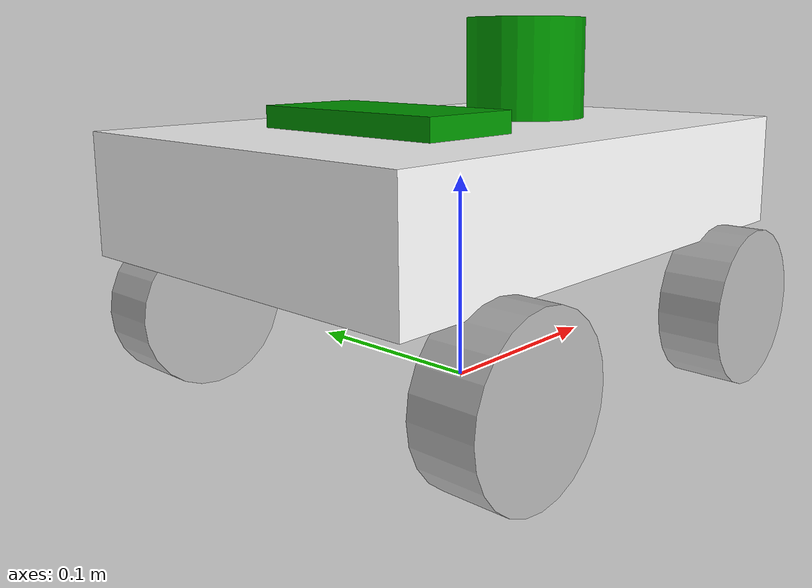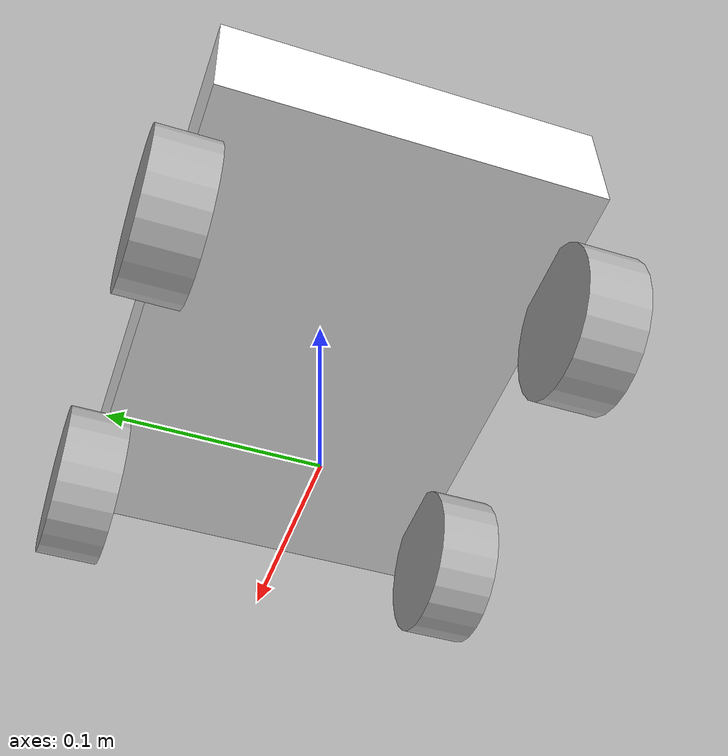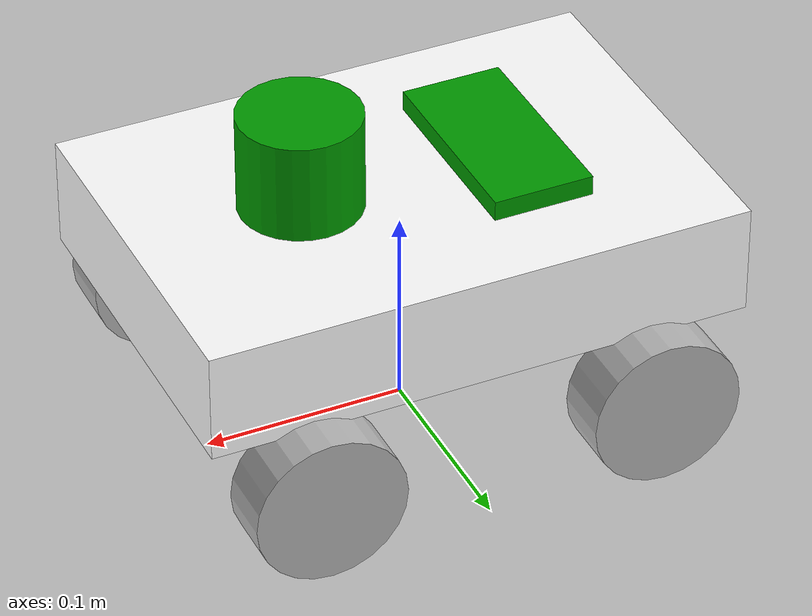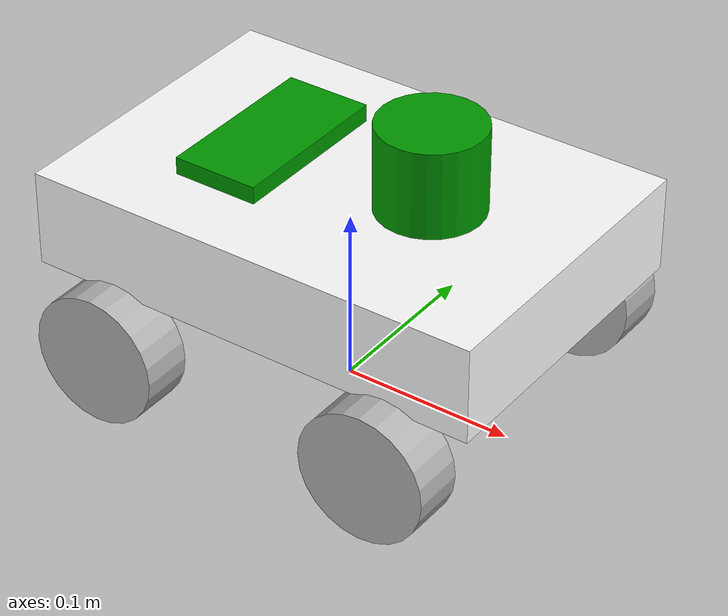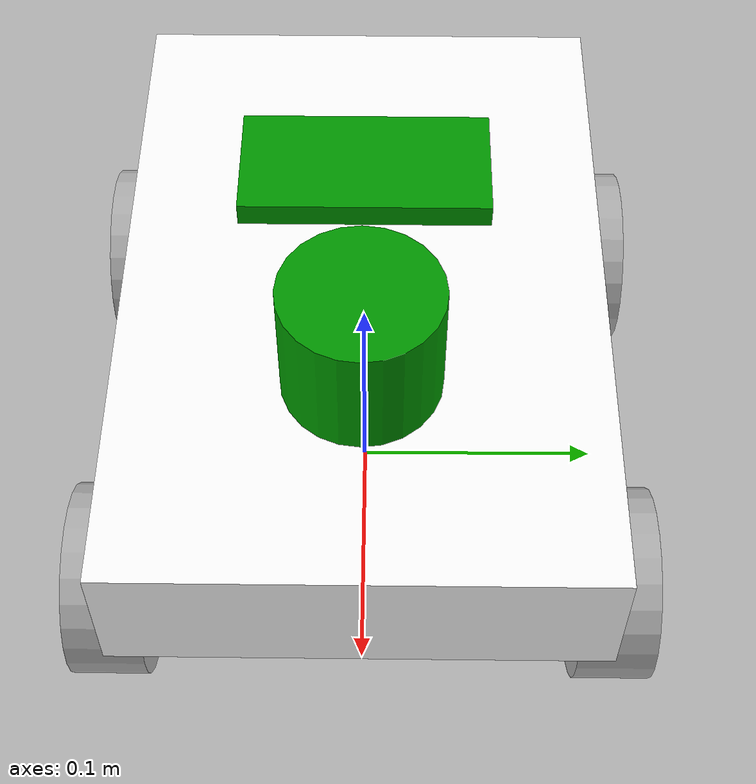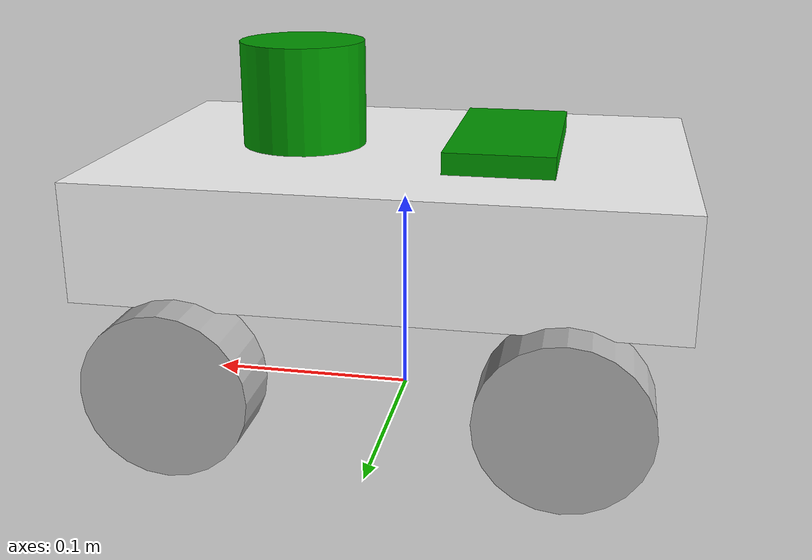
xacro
<?xml version="1.0"?>
<robot name="roscar" xmlns:xacro="http://www.ros.org/wiki/xacro">

    <material name="grey">
        <color rgba="0.7 0.7 0.7 1"/>
    </material>
    <material name="green">
        <color rgba="0 0.6 0 1"/>
    </material>
    <material name="white">
        <color rgba="1 1 1 1"/>
    </material>

    <link name="base_footprint"/>
    <joint name="base_footprint_to_base_link" type="fixed">
        <parent link="base_footprint"/>
        <child link="base_link"/>
        <origin xyz="0 0 0" rpy="0 0 0"/>
    </joint>

    <link name="base_link">
        <visual>
            <geometry>
                <box size="0.27 0.185 0.055"/>
            </geometry>
            <origin xyz="0 0 0.0975" rpy="0 0 0"/>
            <material name="white"/>
        </visual>
        <collision>
            <geometry>
                <box size="0.27 0.185 0.055"/>
            </geometry>
            <origin xyz="0 0 0.0975"/>
        </collision>
        <inertial>
            <origin xyz="0 0 0.0975"/>
            <mass value="1.0"/>
            <inertia ixx="0.03" ixy="0.0" ixz="0.0"
                     iyy="0.05" iyz="0.0"
                     izz="0.07"/>
        </inertial>
    </link>

    <link name="laser_link">
        <visual>
            <geometry>
                <cylinder radius="0.03" length="0.05"/>
            </geometry>
            <origin xyz="0 0 0" rpy="0 0 0"/>
            <material name="green"/>
        </visual>
        <collision>
            <geometry>
                <cylinder radius="0.03" length="0.05"/>
            </geometry>
            <origin xyz="0 0 0"/>
        </collision>
        <inertial>
            <origin xyz="0 0 0"/>
            <mass value="0.2"/>
            <inertia ixx="0.0001" ixy="0" ixz="0"
                     iyy="0.0001" iyz="0"
                     izz="0.0001"/>
        </inertial>
    </link>

    <link name="laser_scan_link"/>
    <joint name="laser_scan_joint" type="fixed">
        <parent link="laser_link"/>
        <child link="laser_scan_link"/>
        <origin xyz="0 0 0.02" rpy="0 0 0"/>
    </joint>

    <link name="imu_link">
        <visual>
            <geometry>
                <box size="0.05 0.1 0.01"/>
            </geometry>
            <origin xyz="0 0 0" rpy="0 0 0"/>
            <material name="green"/>
        </visual>
        <collision>
            <geometry>
                <box size="0.05 0.1 0.01"/>
            </geometry>
            <origin xyz="0 0 0"/>
        </collision>
        <inertial>
            <origin xyz="0 0 0"/>
            <mass value="0.05"/>
            <inertia ixx="0.00001" ixy="0" ixz="0"
                     iyy="0.00001" iyz="0"
                     izz="0.00001"/>
        </inertial>
    </link>

    <xacro:macro name="wheel_link" params="prefix">
        <link name="${prefix}_wheel">
            <visual>
                <geometry>
                    <cylinder radius="0.0375" length="0.03"/>
                </geometry>
                <origin xyz="0 0 0" rpy="1.57 0 0"/>
                <material name="grey"/>
            </visual>
            <collision>
                <geometry>
                    <cylinder radius="0.0375" length="0.03"/>
                </geometry>
                <origin xyz="0 0 0" rpy="1.57 0 0"/>
            </collision>
            <inertial>
                <origin xyz="0 0 0"/>
                <mass value="0.2"/>
                <inertia ixx="0.0001" ixy="0" ixz="0"
                         iyy="0.0001" iyz="0"
                         izz="0.0001"/>
            </inertial>
        </link>
    </xacro:macro>

    <xacro:wheel_link prefix="LR"/>
    <xacro:wheel_link prefix="RR"/>
    <xacro:wheel_link prefix="LF"/>
    <xacro:wheel_link prefix="RF"/>

    <joint name="base_laser_joint" type="fixed">
        <parent link="base_link"/>
        <child link="laser_link"/>
        <origin xyz="0.05 0 0.15" rpy="0 0 0"/>
    </joint>
    <joint name="base_imu_joint" type="fixed">
        <parent link="base_link"/>
        <child link="imu_link"/>
        <origin xyz="-0.05 0 0.13" rpy="0 0 0"/>
    </joint>

    <joint name="base_LR_wheel_joint" type="continuous">
        <parent link="base_link"/>
        <child link="LR_wheel"/>
        <origin xyz="-0.085 0.0975 0.0375" rpy="0 0 0"/>
        <axis xyz="0 1 0"/>
    </joint>
    <joint name="base_RR_wheel_joint" type="continuous">
        <parent link="base_link"/>
        <child link="RR_wheel"/>
        <origin xyz="-0.085 -0.0975 0.0375" rpy="0 0 0"/>
        <axis xyz="0 1 0"/>
    </joint>
    <joint name="base_LF_wheel_joint" type="continuous">
        <parent link="base_link"/>
        <child link="LF_wheel"/>
        <origin xyz="0.085 0.0975 0.0375" rpy="0 0 0"/>
        <axis xyz="0 1 0"/>
    </joint>
    <joint name="base_RF_wheel_joint" type="continuous">
        <parent link="base_link"/>
        <child link="RF_wheel"/>
        <origin xyz="0.085 -0.0975 0.0375" rpy="0 0 0"/>
        <axis xyz="0 1 0"/>
    </joint>

    <gazebo>
        <plugin name="gazebo_ros_planar_move" filename="libgazebo_ros_planar_move.so">
            <commandTopic>cmd_vel</commandTopic>
            <odometryTopic>odom</odometryTopic>
            <odometryFrame>odom</odometryFrame>
            <odometryRate>20.0</odometryRate>
            <robotBaseFrame>base_footprint</robotBaseFrame>
        </plugin>
    </gazebo>

    <gazebo reference="laser_scan_link">
        <sensor type="ray" name="laser">
            <pose>0 0 0 0 0 0</pose>
            <visualize>True</visualize><!-- 要顯示lidar要改True -->
            <update_rate>10</update_rate>
            <ray>
                <scan>
                    <horizontal>
                    <samples>360</samples>
                    <resolution>1</resolution>
                    <min_angle>-3.1415</min_angle>
                    <max_angle>3.1415</max_angle>
                    </horizontal>
                </scan>
                <range>
                    <min>0.05</min>
                    <max>3.5</max>
                    <resolution>0.01</resolution>
                </range>
                <noise>
                    <type>gaussian</type>
                    <mean>0.0</mean>
                    <stddev>0.01</stddev>
                </noise>
            </ray>
            <plugin name="laser" filename="libgazebo_ros_ray_sensor.so">
                <ros>
                    <namespace>/</namespace>
                </ros>
                <frame_name>laser_scan_link</frame_name>
                <topic_name>scan</topic_name>
                <output_type>sensor_msgs/LaserScan</output_type>
            </plugin>
        </sensor>
    </gazebo>

    <gazebo reference="imu_link">
        <sensor type="imu" name="imu_sensor">
            <always_on>true</always_on>
            <update_rate>50</update_rate>
            <visualize>true</visualize>
            <plugin name="imu_plugin" filename="libgazebo_ros_imu_sensor.so">
                <ros>
                    <namespace>/</namespace>
                </ros>
                <topicName>imu/data</topicName>
                <frameName>imu_link</frameName>
            </plugin>
        </sensor>
    </gazebo>

</robot>
